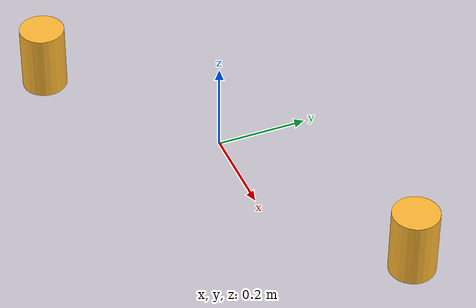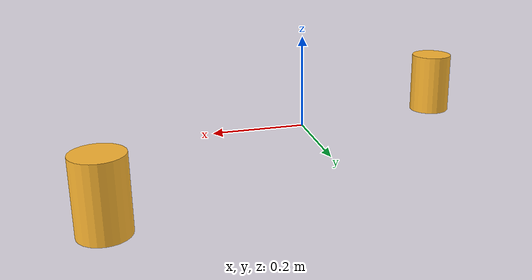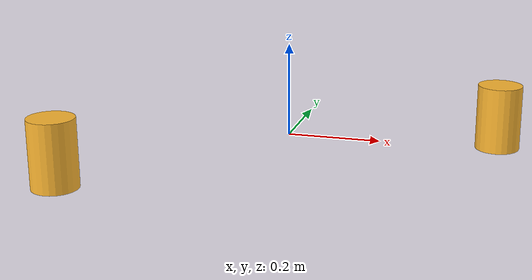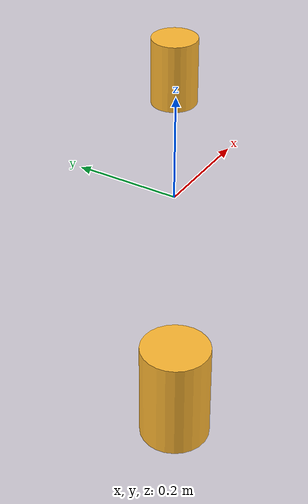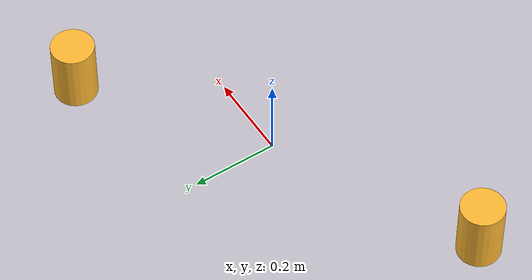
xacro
<?xml version="1.0"?>
<!-- %Tag(FULLTEXT)% -->
<robot xmlns:xacro="http://ros.org/wiki/xacro" name="psen_scan">
  <!-- %Tag(IMPORT_MAP)% -->
  <xacro:include filename="$(find psen_scan_v2)/urdf/psen_scan.urdf.xacro" />
  <link name="base_link"/>
  <!-- %EndTag(IMPORT_MAP)% -->

  <!-- %Tag(FIRST_SCANNER)% -->
  <joint name="laser_1_base_link_joint" type="fixed">
    <parent link="base_link" />
    <child link="laser_1_mount_link" />
    <origin rpy="0 0 ${pi/4}" xyz="0.4 0.22 0"/>
  </joint>
  <xacro:psen_scan prefix="laser_1" />
  <!-- %EndTag(FIRST_SCANNER)% -->

  <!-- %Tag(SECOND_SCANNER)% -->
  <joint name="laser_2_base_link_joint" type="fixed">
    <parent link="base_link" />
    <child link="laser_2_mount_link" />
    <origin rpy="0 0 ${-3*pi/4}" xyz="-0.4 -0.22 0"/>
  </joint>
  <xacro:psen_scan prefix="laser_2" />
  <!-- %EndTag(SECOND_SCANNER)% -->
</robot>
<!-- %EndTag(FULLTEXT)% -->

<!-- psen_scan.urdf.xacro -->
<robot xmlns:xacro="http://ros.org/wiki/xacro">
  <xacro:macro name="psen_scan" params="prefix">
    <xacro:property name="mass" value="1.53" /> <!-- src datasheet p 96 -->
    <xacro:property name="radius" value="0.051" /> <!-- src datasheet p 96 -->
    <xacro:property name="height" value="0.152" /> <!-- src datasheet p 96 -->
    <xacro:property name="dist_scanning_plane_top" value="0.0377" /> <!-- src datasheet p 96 -->
    <xacro:property name="dist_scanning_axis_rear" value="0.0525" /> <!-- src datasheet p 96 -->

    <!-- Location of mounting point at the lower back of device -->
    <link name="${prefix}_mount_link"/>

    <joint name="${prefix}_mount_joint" type="fixed">
      <parent link="${prefix}_mount_link" />
      <child link="${prefix}" />
      <origin rpy="0 0 0" xyz="${radius} 0 0"/>
    </joint>

    <!-- Location of scanner body -->
    <link name="${prefix}">
      <visual>
        <geometry>
          <cylinder radius="${radius}" length="${height}" />
        </geometry>
        <material name="pilz_yellow" >
          <color rgba="1.0 0.722 0.196 1.0" />
        </material>
      </visual>
      <collision>
        <geometry>
          <cylinder radius="${radius}" length="${height}" />
        </geometry>
      </collision>
      <inertial>
        <mass value="${mass}" />
        <origin xyz="0 0 0" />
        <inertia ixx="${1 / 12 * mass * (3 * radius * radius + height * height)}" ixy="0.0" ixz="0.0"
          iyy="${1 / 12 * mass * (3 * radius * radius + height * height)}" iyz="0.0"
          izz="${.5 * mass * (radius * radius)}" />
      </inertial>
    </link>

    <joint name="${prefix}_scan_joint" type="fixed">
      <parent link="${prefix}" />
      <child link="${prefix}_scan" />
      <origin rpy="${pi} 0 0" xyz="0 ${radius - dist_scanning_axis_rear} ${height / 2 - dist_scanning_plane_top}"/>
    </joint>

    <!-- This is the location of the laser scan -->
    <link name="${prefix}_scan">
    </link>
  </xacro:macro>
</robot>
